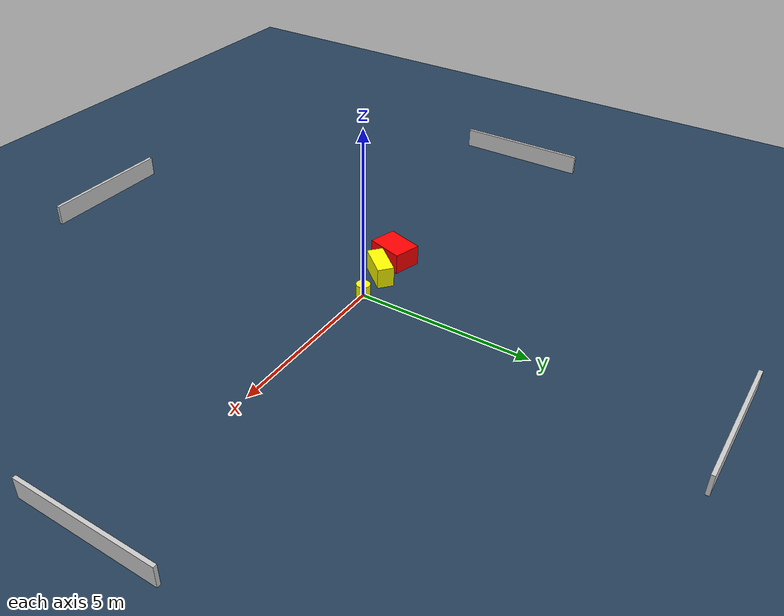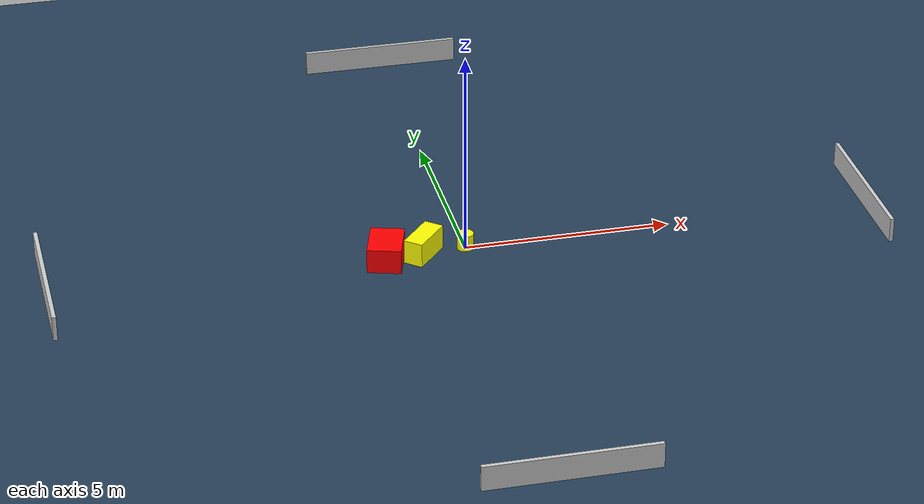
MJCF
<?xml version="1.0" ?>
<mujoco model="generated_environment">
  <option timestep="0.01" integrator="RK4" cone="elliptic"/>
  <default>
    <geom density="1"/>
  </default>
  <asset>
    <texture builtin="gradient" height="3072" name="skybox" rgb1="0.3 0.5 0.7" rgb2="0 0 0" type="skybox" width="512"/>
    <texture builtin="checker" height="300" name="groundplane" rgb1="0.2 0.3 0.4" rgb2="0.1 0.2 0.3" type="2d" width="300"/>
    <material name="groundplane" reflectance="0.2" texrepeat="5 5" texture="groundplane"/>
  </asset>
  <worldbody>
    <light dir="0 0 -1" directional="true" pos="0 0 1.5"/>
    <geom condim="3" friction="0.5 0.005 0.001" material="groundplane" name="floor" pos="0 0 0" size="0 0 0.05" type="plane"/>
    <body name="walls">
      <geom name="wall_1" condim="4" pos="-10.0 0.0 0.3" rgba="0.800000011920929 0.800000011920929 0.800000011920929 1.0" size="0.05 2.0 0.3" type="box"/>
      <geom name="wall_2" condim="4" pos="10.0 0.0 0.3" rgba="0.800000011920929 0.800000011920929 0.800000011920929 1.0" size="0.05 2.0 0.3" type="box"/>
      <geom name="wall_3" condim="4" pos="0.0 -10.0 0.3" rgba="0.800000011920929 0.800000011920929 0.800000011920929 1.0" size="2.0 0.05 0.3" type="box"/>
      <geom name="wall_4" condim="4" pos="0.0 10.0 0.3" rgba="0.800000011920929 0.800000011920929 0.800000011920929 1.0" size="2.0 0.05 0.3" type="box"/>
    </body>
    <body name="robot">
      <joint name="joint_x" type="slide" pos="0 0 0" axis="1 0 0"/>
      <joint name="joint_y" type="slide" pos="0 0 0" axis="0 1 0"/>
      <geom name="robot" type="cylinder" pos="0.0 0.0 0.2" size="0.2 0.2 0.0" mass="5.0" friction="1.0 0.005 0.0001" condim="4" rgba="1.0 1.0 0.0 1.0"/>
    </body>
    <body name="obstacle_1_movable">
      <geom name="obstacle_1_movable" condim="4" pos="-1.0409721626221184 -0.115114247812804 0.3" euler="0 0 319.6541698090532" friction="0.0 0.005 0.001" rgba="1.0 1.0 0.0 1.0" size="0.23817780290951485 0.5335989856717778 0.3" type="box" mass="0.1"/>
      <joint type="free"/>
    </body>
    <body name="obstacle_2_static">
      <geom name="obstacle_2_static" condim="4" pos="-1.975897980561616 -0.2168003371587233 0.3" euler="0 0 253.52395099239547" friction="0.0 0.005 0.001" rgba="1.0 0.0 0.0 1.0" size="0.5465463371886166 0.4085151892625883 0.3" type="box"/>
    </body>
  </worldbody>
  <actuator>
    <motor name="actuator_x" joint="joint_x" gear="1" ctrlrange="-1 1"/>
    <motor name="actuator_y" joint="joint_y" gear="1" ctrlrange="-1 1"/>
  </actuator>
</mujoco>
